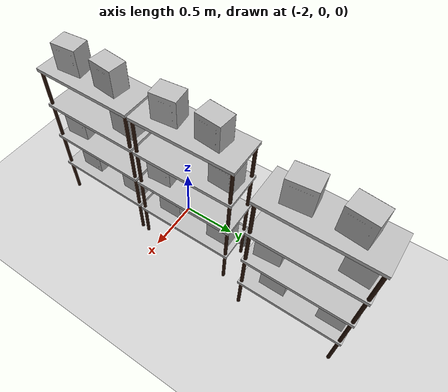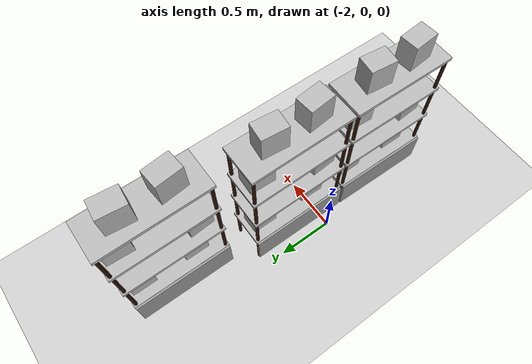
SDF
<sdf version="1.7">
 <world name="default">
  <model name="ground_plane">
   <static>1</static>
   <link name="link">
    <collision name="collision">
     <geometry><plane><normal>0 0 1</normal><size>100 100</size></plane></geometry>
     <surface><friction><ode><mu>100</mu><mu2>50</mu2></ode></friction></surface>
    </collision>
    <visual name="visual">
     <cast_shadows>0</cast_shadows>
     <geometry><plane><normal>0 0 1</normal><size>100 100</size></plane></geometry>
     <material>
      <script><uri>file://media/materials/scripts/gazebo.material</uri><name>Gazebo/Grey</name></script>
     </material>
    </visual>
   </link>
  </model>
  <model name="rack_with_box">
   <link name="link">
    <inertial>
     <mass>1.87</mass>
     <inertia><ixx>0.01857</ixx><ixy>0</ixy><ixz>0</ixz><iyy>0.015598</iyy><iyz>0</iyz><izz>0.00305</izz></inertia>
    </inertial>
    <visual name="visual1">
     <cast_shadows>0</cast_shadows>
     <geometry><mesh><uri>model://rack_with_box/meshes/rack.dae</uri></mesh></geometry>
     <material>
      <shader type="pixel"><normal_map>__default__</normal_map></shader>
      <emissive>0 0 0 1</emissive>
     </material>
    </visual>
    <visual name="visual_2">
     <cast_shadows>0</cast_shadows>
     <geometry><box><size>0.02 0.9 0.31</size></box></geometry>
     <material>
      <lighting>1</lighting>
      <script><uri>file://media/materials/scripts/gazebo.material</uri><name>Gazebo/Grey</name></script>
      <shader type="pixel"><normal_map>__default__</normal_map></shader>
      <ambient>0.3 0.3 0.3 1</ambient>
      <diffuse>0.7 0.7 0.7 1</diffuse>
      <specular>0.01 0.01 0.01 1</specular>
      <emissive>0 0 0 1</emissive>
     </material>
     <pose>-0.185 0 0.22 0 -0 0</pose>
    </visual>
    <visual name="visual_3_box1">
     <cast_shadows>0</cast_shadows>
     <geometry><mesh><uri>model://box/meshes/box.dae</uri></mesh></geometry>
     <material>
      <shader type="pixel"><normal_map>__default__</normal_map></shader>
      <emissive>0 0 0 1</emissive>
     </material>
     <pose>0 -0.2 1.48 0 -0 0.1</pose>
    </visual>
    <visual name="visual_3_box2">
     <cast_shadows>0</cast_shadows>
     <geometry><mesh><uri>model://box/meshes/box.dae</uri></mesh></geometry>
     <material>
      <shader type="pixel"><normal_map>__default__</normal_map></shader>
      <emissive>0 0 0 1</emissive>
     </material>
     <pose>0 0.18 1.48 0 0 -0.1</pose>
    </visual>
    <visual name="visual_3_box3">
     <cast_shadows>0</cast_shadows>
     <geometry><mesh><uri>model://box/meshes/box.dae</uri></mesh></geometry>
     <material>
      <shader type="pixel"><normal_map>__default__</normal_map></shader>
      <emissive>0 0 0 1</emissive>
     </material>
     <pose>0 0.3 1.11 0 0 -0.05</pose>
    </visual>
    <visual name="visual_3_box4">
     <cast_shadows>0</cast_shadows>
     <geometry><mesh><uri>model://box/meshes/box.dae</uri></mesh></geometry>
     <material>
      <shader type="pixel"><normal_map>__default__</normal_map></shader>
      <emissive>0 0 0 1</emissive>
     </material>
     <pose>0 -0.3 0.75 0 -0 0.07</pose>
    </visual>
    <visual name="visual_3_box5">
     <cast_shadows>0</cast_shadows>
     <geometry><mesh><uri>model://box/meshes/box.dae</uri></mesh></geometry>
     <material>
      <shader type="pixel"><normal_map>__default__</normal_map></shader>
      <emissive>0 0 0 1</emissive>
     </material>
     <pose>0 0.3 0.38 0 -0 0</pose>
    </visual>
    <visual name="visual_3_box6">
     <cast_shadows>0</cast_shadows>
     <geometry><mesh><uri>model://box/meshes/box.dae</uri></mesh></geometry>
     <material>
      <shader type="pixel"><normal_map>__default__</normal_map></shader>
      <emissive>0 0 0 1</emissive>
     </material>
     <pose>0 -0.2 0.38 0 -0 0</pose>
    </visual>
    <collision name="collision_7">
     <pose>0 0 0.36 0 1.57 1.57</pose>
     <geometry><box><size>0.05 0.35 0.91</size></box></geometry>
     <surface>
      <friction>
       <ode><mu>1</mu><mu2>1</mu2><fdir1>0 0 0</fdir1><slip1>0</slip1><slip2>0</slip2></ode>
       <torsional>
        <coefficient>1</coefficient>
        <patch_radius>0</patch_radius>
        <surface_radius>0</surface_radius>
        <use_patch_radius>1</use_patch_radius>
        <ode><slip>0</slip></ode>
       </torsional>
      </friction>
      <bounce><restitution_coefficient>0</restitution_coefficient><threshold>1e+06</threshold></bounce>
      <contact>
       <collide_without_contact>0</collide_without_contact>
       <collide_without_contact_bitmask>1</collide_without_contact_bitmask>
       <collide_bitmask>1</collide_bitmask>
       <ode>
        <soft_cfm>0</soft_cfm>
        <soft_erp>0.2</soft_erp>
        <kp>1e+15</kp>
        <kd>1e+13</kd>
        <max_vel>0.01</max_vel>
        <min_depth>0</min_depth>
       </ode>
       <bullet>
        <split_impulse>1</split_impulse>
        <split_impulse_penetration_threshold>-0.01</split_impulse_penetration_threshold>
        <soft_cfm>0</soft_cfm>
        <soft_erp>0.2</soft_erp>
        <kp>1e+13</kp>
        <kd>1</kd>
       </bullet>
      </contact>
     </surface>
    </collision>
    <collision name="collision_6">
     <pose>0 0 0.725 0 1.57 1.57</pose>
     <geometry><box><size>0.05 0.35 0.91</size></box></geometry>
     <surface>
      <friction>
       <ode><mu>1</mu><mu2>1</mu2><fdir1>0 0 0</fdir1><slip1>0</slip1><slip2>0</slip2></ode>
       <torsional>
        <coefficient>1</coefficient>
        <patch_radius>0</patch_radius>
        <surface_radius>0</surface_radius>
        <use_patch_radius>1</use_patch_radius>
        <ode><slip>0</slip></ode>
       </torsional>
      </friction>
      <bounce><restitution_coefficient>0</restitution_coefficient><threshold>1e+06</threshold></bounce>
      <contact>
       <collide_without_contact>0</collide_without_contact>
       <collide_without_contact_bitmask>1</collide_without_contact_bitmask>
       <collide_bitmask>1</collide_bitmask>
       <ode>
        <soft_cfm>0</soft_cfm>
        <soft_erp>0.2</soft_erp>
        <kp>1e+15</kp>
        <kd>1e+13</kd>
        <max_vel>0.01</max_vel>
        <min_depth>0</min_depth>
       </ode>
       <bullet>
        <split_impulse>1</split_impulse>
        <split_impulse_penetration_threshold>-0.01</split_impulse_penetration_threshold>
        <soft_cfm>0</soft_cfm>
        <soft_erp>0.2</soft_erp>
        <kp>1e+13</kp>
        <kd>1</kd>
       </bullet>
      </contact>
     </surface>
    </collision>
    <collision name="collision_5">
     <pose>0 0 1.09 0 1.57 1.57</pose>
     <geometry><box><size>0.05 0.35 0.91</size></box></geometry>
     <surface>
      <friction>
       <ode><mu>1</mu><mu2>1</mu2><fdir1>0 0 0</fdir1><slip1>0</slip1><slip2>0</slip2></ode>
       <torsional>
        <coefficient>1</coefficient>
        <patch_radius>0</patch_radius>
        <surface_radius>0</surface_radius>
        <use_patch_radius>1</use_patch_radius>
        <ode><slip>0</slip></ode>
       </torsional>
      </friction>
      <bounce><restitution_coefficient>0</restitution_coefficient><threshold>1e+06</threshold></bounce>
      <contact>
       <collide_without_contact>0</collide_without_contact>
       <collide_without_contact_bitmask>1</collide_without_contact_bitmask>
       <collide_bitmask>1</collide_bitmask>
       <ode>
        <soft_cfm>0</soft_cfm>
        <soft_erp>0.2</soft_erp>
        <kp>1e+15</kp>
        <kd>1e+13</kd>
        <max_vel>0.01</max_vel>
        <min_depth>0</min_depth>
       </ode>
       <bullet>
        <split_impulse>1</split_impulse>
        <split_impulse_penetration_threshold>-0.01</split_impulse_penetration_threshold>
        <soft_cfm>0</soft_cfm>
        <soft_erp>0.2</soft_erp>
        <kp>1e+13</kp>
        <kd>1</kd>
       </bullet>
      </contact>
     </surface>
    </collision>
    <collision name="collision_3">
     <pose>0 0 1.455 0 1.57 1.57</pose>
     <geometry><box><size>0.05 0.35 0.91</size></box></geometry>
     <surface>
      <friction>
       <ode><mu>1</mu><mu2>1</mu2><fdir1>0 0 0</fdir1><slip1>0</slip1><slip2>0</slip2></ode>
       <torsional>
        <coefficient>1</coefficient>
        <patch_radius>0</patch_radius>
        <surface_radius>0</surface_radius>
        <use_patch_radius>1</use_patch_radius>
        <ode><slip>0</slip></ode>
       </torsional>
      </friction>
      <bounce><restitution_coefficient>0</restitution_coefficient><threshold>1e+06</threshold></bounce>
      <contact>
       <collide_without_contact>0</collide_without_contact>
       <collide_without_contact_bitmask>1</collide_without_contact_bitmask>
       <collide_bitmask>1</collide_bitmask>
       <ode>
        <soft_cfm>0</soft_cfm>
        <soft_erp>0.2</soft_erp>
        <kp>1e+15</kp>
        <kd>1e+13</kd>
        <max_vel>0.01</max_vel>
        <min_depth>0</min_depth>
       </ode>
       <bullet>
        <split_impulse>1</split_impulse>
        <split_impulse_penetration_threshold>-0.01</split_impulse_penetration_threshold>
        <soft_cfm>0</soft_cfm>
        <soft_erp>0.2</soft_erp>
        <kp>1e+13</kp>
        <kd>1</kd>
       </bullet>
      </contact>
     </surface>
    </collision>
    <collision name="collision_1">
     <pose>0 0.43 0.73 0 -0 1.57</pose>
     <geometry><box><size>0.05 0.36 1.46</size></box></geometry>
     <surface>
      <friction>
       <ode><mu>1</mu><mu2>1</mu2><fdir1>0 0 0</fdir1><slip1>0</slip1><slip2>0</slip2></ode>
       <torsional>
        <coefficient>1</coefficient>
        <patch_radius>0</patch_radius>
        <surface_radius>0</surface_radius>
        <use_patch_radius>1</use_patch_radius>
        <ode><slip>0</slip></ode>
       </torsional>
      </friction>
      <bounce><restitution_coefficient>0</restitution_coefficient><threshold>1e+06</threshold></bounce>
      <contact>
       <collide_without_contact>0</collide_without_contact>
       <collide_without_contact_bitmask>1</collide_without_contact_bitmask>
       <collide_bitmask>1</collide_bitmask>
       <ode>
        <soft_cfm>0</soft_cfm>
        <soft_erp>0.2</soft_erp>
        <kp>1e+15</kp>
        <kd>1e+13</kd>
        <max_vel>0.01</max_vel>
        <min_depth>0</min_depth>
       </ode>
       <bullet>
        <split_impulse>1</split_impulse>
        <split_impulse_penetration_threshold>-0.01</split_impulse_penetration_threshold>
        <soft_cfm>0</soft_cfm>
        <soft_erp>0.2</soft_erp>
        <kp>1e+13</kp>
        <kd>1</kd>
       </bullet>
      </contact>
     </surface>
    </collision>
    <collision name="collision_2">
     <pose>0 -0.43 0.73 0 -0 1.57</pose>
     <geometry><box><size>0.05 0.36 1.46</size></box></geometry>
     <surface>
      <friction>
       <ode><mu>1</mu><mu2>1</mu2><fdir1>0 0 0</fdir1><slip1>0</slip1><slip2>0</slip2></ode>
       <torsional>
        <coefficient>1</coefficient>
        <patch_radius>0</patch_radius>
        <surface_radius>0</surface_radius>
        <use_patch_radius>1</use_patch_radius>
        <ode><slip>0</slip></ode>
       </torsional>
      </friction>
      <bounce><restitution_coefficient>0</restitution_coefficient><threshold>1e+06</threshold></bounce>
      <contact>
       <collide_without_contact>0</collide_without_contact>
       <collide_without_contact_bitmask>1</collide_without_contact_bitmask>
       <collide_bitmask>1</collide_bitmask>
       <ode>
        <soft_cfm>0</soft_cfm>
        <soft_erp>0.2</soft_erp>
        <kp>1e+15</kp>
        <kd>1e+13</kd>
        <max_vel>0.01</max_vel>
        <min_depth>0</min_depth>
       </ode>
       <bullet>
        <split_impulse>1</split_impulse>
        <split_impulse_penetration_threshold>-0.01</split_impulse_penetration_threshold>
        <soft_cfm>0</soft_cfm>
        <soft_erp>0.2</soft_erp>
        <kp>1e+13</kp>
        <kd>1</kd>
       </bullet>
      </contact>
     </surface>
    </collision>
    <collision name="collision">
     <pose>-0.185 0 0.22 0 -0 0</pose>
     <geometry><box><size>0.02 0.9 0.31</size></box></geometry>
     <surface>
      <friction>
       <ode><mu>1</mu><mu2>1</mu2><fdir1>0 0 0</fdir1><slip1>0</slip1><slip2>0</slip2></ode>
       <torsional>
        <coefficient>1</coefficient>
        <patch_radius>0</patch_radius>
        <surface_radius>0</surface_radius>
        <use_patch_radius>1</use_patch_radius>
        <ode><slip>0</slip></ode>
       </torsional>
      </friction>
      <bounce><restitution_coefficient>0</restitution_coefficient><threshold>1e+06</threshold></bounce>
      <contact>
       <collide_without_contact>0</collide_without_contact>
       <collide_without_contact_bitmask>1</collide_without_contact_bitmask>
       <collide_bitmask>1</collide_bitmask>
       <ode>
        <soft_cfm>0</soft_cfm>
        <soft_erp>0.2</soft_erp>
        <kp>1e+15</kp>
        <kd>1e+13</kd>
        <max_vel>0.01</max_vel>
        <min_depth>0</min_depth>
       </ode>
       <bullet>
        <split_impulse>1</split_impulse>
        <split_impulse_penetration_threshold>-0.01</split_impulse_penetration_threshold>
        <soft_cfm>0</soft_cfm>
        <soft_erp>0.2</soft_erp>
        <kp>1e+13</kp>
        <kd>1</kd>
       </bullet>
      </contact>
     </surface>
    </collision>
   </link>
   <static>0</static>
   <pose>-1.59603 1.35995 -0 0 -0 0</pose>
  </model>
  <model name="rack_with_box_0">
   <link name="link">
    <inertial>
     <mass>1.87</mass>
     <inertia><ixx>0.01857</ixx><ixy>0</ixy><ixz>0</ixz><iyy>0.015598</iyy><iyz>0</iyz><izz>0.00305</izz></inertia>
    </inertial>
    <visual name="visual1">
     <cast_shadows>0</cast_shadows>
     <geometry><mesh><uri>model://rack_with_box/meshes/rack.dae</uri></mesh></geometry>
     <material>
      <shader type="pixel"><normal_map>__default__</normal_map></shader>
      <emissive>0 0 0 1</emissive>
     </material>
    </visual>
    <visual name="visual_2">
     <cast_shadows>0</cast_shadows>
     <geometry><box><size>0.02 0.9 0.31</size></box></geometry>
     <material>
      <lighting>1</lighting>
      <script><uri>file://media/materials/scripts/gazebo.material</uri><name>Gazebo/Grey</name></script>
      <shader type="pixel"><normal_map>__default__</normal_map></shader>
      <ambient>0.3 0.3 0.3 1</ambient>
      <diffuse>0.7 0.7 0.7 1</diffuse>
      <specular>0.01 0.01 0.01 1</specular>
      <emissive>0 0 0 1</emissive>
     </material>
     <pose>-0.185 0 0.22 0 -0 0</pose>
    </visual>
    <visual name="visual_3_box1">
     <cast_shadows>0</cast_shadows>
     <geometry><mesh><uri>model://box/meshes/box.dae</uri></mesh></geometry>
     <material>
      <shader type="pixel"><normal_map>__default__</normal_map></shader>
      <emissive>0 0 0 1</emissive>
     </material>
     <pose>0 -0.2 1.48 0 -0 0.1</pose>
    </visual>
    <visual name="visual_3_box2">
     <cast_shadows>0</cast_shadows>
     <geometry><mesh><uri>model://box/meshes/box.dae</uri></mesh></geometry>
     <material>
      <shader type="pixel"><normal_map>__default__</normal_map></shader>
      <emissive>0 0 0 1</emissive>
     </material>
     <pose>0 0.18 1.48 0 0 -0.1</pose>
    </visual>
    <visual name="visual_3_box3">
     <cast_shadows>0</cast_shadows>
     <geometry><mesh><uri>model://box/meshes/box.dae</uri></mesh></geometry>
     <material>
      <shader type="pixel"><normal_map>__default__</normal_map></shader>
      <emissive>0 0 0 1</emissive>
     </material>
     <pose>0 0.3 1.11 0 0 -0.05</pose>
    </visual>
    <visual name="visual_3_box4">
     <cast_shadows>0</cast_shadows>
     <geometry><mesh><uri>model://box/meshes/box.dae</uri></mesh></geometry>
     <material>
      <shader type="pixel"><normal_map>__default__</normal_map></shader>
      <emissive>0 0 0 1</emissive>
     </material>
     <pose>0 -0.3 0.75 0 -0 0.07</pose>
    </visual>
    <visual name="visual_3_box5">
     <cast_shadows>0</cast_shadows>
     <geometry><mesh><uri>model://box/meshes/box.dae</uri></mesh></geometry>
     <material>
      <shader type="pixel"><normal_map>__default__</normal_map></shader>
      <emissive>0 0 0 1</emissive>
     </material>
     <pose>0 0.3 0.38 0 -0 0</pose>
    </visual>
    <visual name="visual_3_box6">
     <cast_shadows>0</cast_shadows>
     <geometry><mesh><uri>model://box/meshes/box.dae</uri></mesh></geometry>
     <material>
      <shader type="pixel"><normal_map>__default__</normal_map></shader>
      <emissive>0 0 0 1</emissive>
     </material>
     <pose>0 -0.2 0.38 0 -0 0</pose>
    </visual>
    <collision name="collision_7">
     <pose>0 0 0.36 0 1.57 1.57</pose>
     <geometry><box><size>0.05 0.35 0.91</size></box></geometry>
     <surface>
      <friction>
       <ode><mu>1</mu><mu2>1</mu2><fdir1>0 0 0</fdir1><slip1>0</slip1><slip2>0</slip2></ode>
       <torsional>
        <coefficient>1</coefficient>
        <patch_radius>0</patch_radius>
        <surface_radius>0</surface_radius>
        <use_patch_radius>1</use_patch_radius>
        <ode><slip>0</slip></ode>
       </torsional>
      </friction>
      <bounce><restitution_coefficient>0</restitution_coefficient><threshold>1e+06</threshold></bounce>
      <contact>
       <collide_without_contact>0</collide_without_contact>
       <collide_without_contact_bitmask>1</collide_without_contact_bitmask>
       <collide_bitmask>1</collide_bitmask>
       <ode>
        <soft_cfm>0</soft_cfm>
        <soft_erp>0.2</soft_erp>
        <kp>1e+15</kp>
        <kd>1e+13</kd>
        <max_vel>0.01</max_vel>
        <min_depth>0</min_depth>
       </ode>
       <bullet>
        <split_impulse>1</split_impulse>
        <split_impulse_penetration_threshold>-0.01</split_impulse_penetration_threshold>
        <soft_cfm>0</soft_cfm>
        <soft_erp>0.2</soft_erp>
        <kp>1e+13</kp>
        <kd>1</kd>
       </bullet>
      </contact>
     </surface>
    </collision>
    <collision name="collision_6">
     <pose>0 0 0.725 0 1.57 1.57</pose>
     <geometry><box><size>0.05 0.35 0.91</size></box></geometry>
     <surface>
      <friction>
       <ode><mu>1</mu><mu2>1</mu2><fdir1>0 0 0</fdir1><slip1>0</slip1><slip2>0</slip2></ode>
       <torsional>
        <coefficient>1</coefficient>
        <patch_radius>0</patch_radius>
        <surface_radius>0</surface_radius>
        <use_patch_radius>1</use_patch_radius>
        <ode><slip>0</slip></ode>
       </torsional>
      </friction>
      <bounce><restitution_coefficient>0</restitution_coefficient><threshold>1e+06</threshold></bounce>
      <contact>
       <collide_without_contact>0</collide_without_contact>
       <collide_without_contact_bitmask>1</collide_without_contact_bitmask>
       <collide_bitmask>1</collide_bitmask>
       <ode>
        <soft_cfm>0</soft_cfm>
        <soft_erp>0.2</soft_erp>
        <kp>1e+15</kp>
        <kd>1e+13</kd>
        <max_vel>0.01</max_vel>
        <min_depth>0</min_depth>
       </ode>
       <bullet>
        <split_impulse>1</split_impulse>
        <split_impulse_penetration_threshold>-0.01</split_impulse_penetration_threshold>
        <soft_cfm>0</soft_cfm>
        <soft_erp>0.2</soft_erp>
        <kp>1e+13</kp>
        <kd>1</kd>
       </bullet>
      </contact>
     </surface>
    </collision>
    <collision name="collision_5">
     <pose>0 0 1.09 0 1.57 1.57</pose>
     <geometry><box><size>0.05 0.35 0.91</size></box></geometry>
     <surface>
      <friction>
       <ode><mu>1</mu><mu2>1</mu2><fdir1>0 0 0</fdir1><slip1>0</slip1><slip2>0</slip2></ode>
       <torsional>
        <coefficient>1</coefficient>
        <patch_radius>0</patch_radius>
        <surface_radius>0</surface_radius>
        <use_patch_radius>1</use_patch_radius>
        <ode><slip>0</slip></ode>
       </torsional>
      </friction>
      <bounce><restitution_coefficient>0</restitution_coefficient><threshold>1e+06</threshold></bounce>
      <contact>
       <collide_without_contact>0</collide_without_contact>
       <collide_without_contact_bitmask>1</collide_without_contact_bitmask>
       <collide_bitmask>1</collide_bitmask>
       <ode>
        <soft_cfm>0</soft_cfm>
        <soft_erp>0.2</soft_erp>
        <kp>1e+15</kp>
        <kd>1e+13</kd>
        <max_vel>0.01</max_vel>
        <min_depth>0</min_depth>
       </ode>
       <bullet>
        <split_impulse>1</split_impulse>
        <split_impulse_penetration_threshold>-0.01</split_impulse_penetration_threshold>
        <soft_cfm>0</soft_cfm>
        <soft_erp>0.2</soft_erp>
        <kp>1e+13</kp>
        <kd>1</kd>
       </bullet>
      </contact>
     </surface>
    </collision>
    <collision name="collision_3">
     <pose>0 0 1.455 0 1.57 1.57</pose>
     <geometry><box><size>0.05 0.35 0.91</size></box></geometry>
     <surface>
      <friction>
       <ode><mu>1</mu><mu2>1</mu2><fdir1>0 0 0</fdir1><slip1>0</slip1><slip2>0</slip2></ode>
       <torsional>
        <coefficient>1</coefficient>
        <patch_radius>0</patch_radius>
        <surface_radius>0</surface_radius>
        <use_patch_radius>1</use_patch_radius>
        <ode><slip>0</slip></ode>
       </torsional>
      </friction>
      <bounce><restitution_coefficient>0</restitution_coefficient><threshold>1e+06</threshold></bounce>
      <contact>
       <collide_without_contact>0</collide_without_contact>
       <collide_without_contact_bitmask>1</collide_without_contact_bitmask>
       <collide_bitmask>1</collide_bitmask>
       <ode>
        <soft_cfm>0</soft_cfm>
        <soft_erp>0.2</soft_erp>
        <kp>1e+15</kp>
        <kd>1e+13</kd>
        <max_vel>0.01</max_vel>
        <min_depth>0</min_depth>
       </ode>
       <bullet>
        <split_impulse>1</split_impulse>
        <split_impulse_penetration_threshold>-0.01</split_impulse_penetration_threshold>
        <soft_cfm>0</soft_cfm>
        <soft_erp>0.2</soft_erp>
        <kp>1e+13</kp>
        <kd>1</kd>
       </bullet>
      </contact>
     </surface>
    </collision>
    <collision name="collision_1">
     <pose>0 0.43 0.73 0 -0 1.57</pose>
     <geometry><box><size>0.05 0.36 1.46</size></box></geometry>
     <surface>
      <friction>
       <ode><mu>1</mu><mu2>1</mu2><fdir1>0 0 0</fdir1><slip1>0</slip1><slip2>0</slip2></ode>
       <torsional>
        <coefficient>1</coefficient>
        <patch_radius>0</patch_radius>
        <surface_radius>0</surface_radius>
        <use_patch_radius>1</use_patch_radius>
        <ode><slip>0</slip></ode>
       </torsional>
      </friction>
      <bounce><restitution_coefficient>0</restitution_coefficient><threshold>1e+06</threshold></bounce>
      <contact>
       <collide_without_contact>0</collide_without_contact>
       <collide_without_contact_bitmask>1</collide_without_contact_bitmask>
       <collide_bitmask>1</collide_bitmask>
       <ode>
        <soft_cfm>0</soft_cfm>
        <soft_erp>0.2</soft_erp>
        <kp>1e+15</kp>
        <kd>1e+13</kd>
        <max_vel>0.01</max_vel>
        <min_depth>0</min_depth>
       </ode>
       <bullet>
        <split_impulse>1</split_impulse>
        <split_impulse_penetration_threshold>-0.01</split_impulse_penetration_threshold>
        <soft_cfm>0</soft_cfm>
        <soft_erp>0.2</soft_erp>
        <kp>1e+13</kp>
        <kd>1</kd>
       </bullet>
      </contact>
     </surface>
    </collision>
    <collision name="collision_2">
     <pose>0 -0.43 0.73 0 -0 1.57</pose>
     <geometry><box><size>0.05 0.36 1.46</size></box></geometry>
     <surface>
      <friction>
       <ode><mu>1</mu><mu2>1</mu2><fdir1>0 0 0</fdir1><slip1>0</slip1><slip2>0</slip2></ode>
       <torsional>
        <coefficient>1</coefficient>
        <patch_radius>0</patch_radius>
        <surface_radius>0</surface_radius>
        <use_patch_radius>1</use_patch_radius>
        <ode><slip>0</slip></ode>
       </torsional>
      </friction>
      <bounce><restitution_coefficient>0</restitution_coefficient><threshold>1e+06</threshold></bounce>
      <contact>
       <collide_without_contact>0</collide_without_contact>
       <collide_without_contact_bitmask>1</collide_without_contact_bitmask>
       <collide_bitmask>1</collide_bitmask>
       <ode>
        <soft_cfm>0</soft_cfm>
        <soft_erp>0.2</soft_erp>
        <kp>1e+15</kp>
        <kd>1e+13</kd>
        <max_vel>0.01</max_vel>
        <min_depth>0</min_depth>
       </ode>
       <bullet>
        <split_impulse>1</split_impulse>
        <split_impulse_penetration_threshold>-0.01</split_impulse_penetration_threshold>
        <soft_cfm>0</soft_cfm>
        <soft_erp>0.2</soft_erp>
        <kp>1e+13</kp>
        <kd>1</kd>
       </bullet>
      </contact>
     </surface>
    </collision>
    <collision name="collision">
     <pose>-0.185 0 0.22 0 -0 0</pose>
     <geometry><box><size>0.02 0.9 0.31</size></box></geometry>
     <surface>
      <friction>
       <ode><mu>1</mu><mu2>1</mu2><fdir1>0 0 0</fdir1><slip1>0</slip1><slip2>0</slip2></ode>
       <torsional>
        <coefficient>1</coefficient>
        <patch_radius>0</patch_radius>
        <surface_radius>0</surface_radius>
        <use_patch_radius>1</use_patch_radius>
        <ode><slip>0</slip></ode>
       </torsional>
      </friction>
      <bounce><restitution_coefficient>0</restitution_coefficient><threshold>1e+06</threshold></bounce>
      <contact>
       <collide_without_contact>0</collide_without_contact>
       <collide_without_contact_bitmask>1</collide_without_contact_bitmask>
       <collide_bitmask>1</collide_bitmask>
       <ode>
        <soft_cfm>0</soft_cfm>
        <soft_erp>0.2</soft_erp>
        <kp>1e+15</kp>
        <kd>1e+13</kd>
        <max_vel>0.01</max_vel>
        <min_depth>0</min_depth>
       </ode>
       <bullet>
        <split_impulse>1</split_impulse>
        <split_impulse_penetration_threshold>-0.01</split_impulse_penetration_threshold>
        <soft_cfm>0</soft_cfm>
        <soft_erp>0.2</soft_erp>
        <kp>1e+13</kp>
        <kd>1</kd>
       </bullet>
      </contact>
     </surface>
    </collision>
   </link>
   <static>0</static>
   <pose>-1.72754 0.256402 -0 0 -0 0</pose>
  </model>
  <model name="rack_with_box_1">
   <link name="link">
    <inertial>
     <mass>1.87</mass>
     <inertia><ixx>0.01857</ixx><ixy>0</ixy><ixz>0</ixz><iyy>0.015598</iyy><iyz>0</iyz><izz>0.00305</izz></inertia>
    </inertial>
    <visual name="visual1">
     <cast_shadows>0</cast_shadows>
     <geometry><mesh><uri>model://rack_with_box/meshes/rack.dae</uri></mesh></geometry>
     <material>
      <shader type="pixel"><normal_map>__default__</normal_map></shader>
      <emissive>0 0 0 1</emissive>
     </material>
    </visual>
    <visual name="visual_2">
     <cast_shadows>0</cast_shadows>
     <geometry><box><size>0.02 0.9 0.31</size></box></geometry>
     <material>
      <lighting>1</lighting>
      <script><uri>file://media/materials/scripts/gazebo.material</uri><name>Gazebo/Grey</name></script>
      <shader type="pixel"><normal_map>__default__</normal_map></shader>
      <ambient>0.3 0.3 0.3 1</ambient>
      <diffuse>0.7 0.7 0.7 1</diffuse>
      <specular>0.01 0.01 0.01 1</specular>
      <emissive>0 0 0 1</emissive>
     </material>
     <pose>-0.185 0 0.22 0 -0 0</pose>
    </visual>
    <visual name="visual_3_box1">
     <cast_shadows>0</cast_shadows>
     <geometry><mesh><uri>model://box/meshes/box.dae</uri></mesh></geometry>
     <material>
      <shader type="pixel"><normal_map>__default__</normal_map></shader>
      <emissive>0 0 0 1</emissive>
     </material>
     <pose>0 -0.2 1.48 0 -0 0.1</pose>
    </visual>
    <visual name="visual_3_box2">
     <cast_shadows>0</cast_shadows>
     <geometry><mesh><uri>model://box/meshes/box.dae</uri></mesh></geometry>
     <material>
      <shader type="pixel"><normal_map>__default__</normal_map></shader>
      <emissive>0 0 0 1</emissive>
     </material>
     <pose>0 0.18 1.48 0 0 -0.1</pose>
    </visual>
    <visual name="visual_3_box3">
     <cast_shadows>0</cast_shadows>
     <geometry><mesh><uri>model://box/meshes/box.dae</uri></mesh></geometry>
     <material>
      <shader type="pixel"><normal_map>__default__</normal_map></shader>
      <emissive>0 0 0 1</emissive>
     </material>
     <pose>0 0.3 1.11 0 0 -0.05</pose>
    </visual>
    <visual name="visual_3_box4">
     <cast_shadows>0</cast_shadows>
     <geometry><mesh><uri>model://box/meshes/box.dae</uri></mesh></geometry>
     <material>
      <shader type="pixel"><normal_map>__default__</normal_map></shader>
      <emissive>0 0 0 1</emissive>
     </material>
     <pose>0 -0.3 0.75 0 -0 0.07</pose>
    </visual>
    <visual name="visual_3_box5">
     <cast_shadows>0</cast_shadows>
     <geometry><mesh><uri>model://box/meshes/box.dae</uri></mesh></geometry>
     <material>
      <shader type="pixel"><normal_map>__default__</normal_map></shader>
      <emissive>0 0 0 1</emissive>
     </material>
     <pose>0 0.3 0.38 0 -0 0</pose>
    </visual>
    <visual name="visual_3_box6">
     <cast_shadows>0</cast_shadows>
     <geometry><mesh><uri>model://box/meshes/box.dae</uri></mesh></geometry>
     <material>
      <shader type="pixel"><normal_map>__default__</normal_map></shader>
      <emissive>0 0 0 1</emissive>
     </material>
     <pose>0 -0.2 0.38 0 -0 0</pose>
    </visual>
    <collision name="collision_7">
     <pose>0 0 0.36 0 1.57 1.57</pose>
     <geometry><box><size>0.05 0.35 0.91</size></box></geometry>
     <surface>
      <friction>
       <ode><mu>1</mu><mu2>1</mu2><fdir1>0 0 0</fdir1><slip1>0</slip1><slip2>0</slip2></ode>
       <torsional>
        <coefficient>1</coefficient>
        <patch_radius>0</patch_radius>
        <surface_radius>0</surface_radius>
        <use_patch_radius>1</use_patch_radius>
        <ode><slip>0</slip></ode>
       </torsional>
      </friction>
      <bounce><restitution_coefficient>0</restitution_coefficient><threshold>1e+06</threshold></bounce>
      <contact>
       <collide_without_contact>0</collide_without_contact>
       <collide_without_contact_bitmask>1</collide_without_contact_bitmask>
       <collide_bitmask>1</collide_bitmask>
       <ode>
        <soft_cfm>0</soft_cfm>
        <soft_erp>0.2</soft_erp>
        <kp>1e+15</kp>
        <kd>1e+13</kd>
        <max_vel>0.01</max_vel>
        <min_depth>0</min_depth>
       </ode>
       <bullet>
        <split_impulse>1</split_impulse>
        <split_impulse_penetration_threshold>-0.01</split_impulse_penetration_threshold>
        <soft_cfm>0</soft_cfm>
        <soft_erp>0.2</soft_erp>
        <kp>1e+13</kp>
        <kd>1</kd>
       </bullet>
      </contact>
     </surface>
    </collision>
    <collision name="collision_6">
     <pose>0 0 0.725 0 1.57 1.57</pose>
     <geometry><box><size>0.05 0.35 0.91</size></box></geometry>
     <surface>
      <friction>
       <ode><mu>1</mu><mu2>1</mu2><fdir1>0 0 0</fdir1><slip1>0</slip1><slip2>0</slip2></ode>
       <torsional>
        <coefficient>1</coefficient>
        <patch_radius>0</patch_radius>
        <surface_radius>0</surface_radius>
        <use_patch_radius>1</use_patch_radius>
        <ode><slip>0</slip></ode>
       </torsional>
      </friction>
      <bounce><restitution_coefficient>0</restitution_coefficient><threshold>1e+06</threshold></bounce>
      <contact>
       <collide_without_contact>0</collide_without_contact>
       <collide_without_contact_bitmask>1</collide_without_contact_bitmask>
       <collide_bitmask>1</collide_bitmask>
       <ode>
        <soft_cfm>0</soft_cfm>
        <soft_erp>0.2</soft_erp>
        <kp>1e+15</kp>
        <kd>1e+13</kd>
        <max_vel>0.01</max_vel>
        <min_depth>0</min_depth>
       </ode>
       <bullet>
        <split_impulse>1</split_impulse>
        <split_impulse_penetration_threshold>-0.01</split_impulse_penetration_threshold>
        <soft_cfm>0</soft_cfm>
        <soft_erp>0.2</soft_erp>
        <kp>1e+13</kp>
        <kd>1</kd>
       </bullet>
      </contact>
     </surface>
    </collision>
    <collision name="collision_5">
     <pose>0 0 1.09 0 1.57 1.57</pose>
     <geometry><box><size>0.05 0.35 0.91</size></box></geometry>
     <surface>
      <friction>
       <ode><mu>1</mu><mu2>1</mu2><fdir1>0 0 0</fdir1><slip1>0</slip1><slip2>0</slip2></ode>
       <torsional>
        <coefficient>1</coefficient>
        <patch_radius>0</patch_radius>
        <surface_radius>0</surface_radius>
        <use_patch_radius>1</use_patch_radius>
        <ode><slip>0</slip></ode>
       </torsional>
      </friction>
      <bounce><restitution_coefficient>0</restitution_coefficient><threshold>1e+06</threshold></bounce>
      <contact>
       <collide_without_contact>0</collide_without_contact>
       <collide_without_contact_bitmask>1</collide_without_contact_bitmask>
       <collide_bitmask>1</collide_bitmask>
       <ode>
        <soft_cfm>0</soft_cfm>
        <soft_erp>0.2</soft_erp>
        <kp>1e+15</kp>
        <kd>1e+13</kd>
        <max_vel>0.01</max_vel>
        <min_depth>0</min_depth>
       </ode>
       <bullet>
        <split_impulse>1</split_impulse>
        <split_impulse_penetration_threshold>-0.01</split_impulse_penetration_threshold>
        <soft_cfm>0</soft_cfm>
        <soft_erp>0.2</soft_erp>
        <kp>1e+13</kp>
        <kd>1</kd>
       </bullet>
      </contact>
     </surface>
    </collision>
    <collision name="collision_3">
     <pose>0 0 1.455 0 1.57 1.57</pose>
     <geometry><box><size>0.05 0.35 0.91</size></box></geometry>
     <surface>
      <friction>
       <ode><mu>1</mu><mu2>1</mu2><fdir1>0 0 0</fdir1><slip1>0</slip1><slip2>0</slip2></ode>
       <torsional>
        <coefficient>1</coefficient>
        <patch_radius>0</patch_radius>
        <surface_radius>0</surface_radius>
        <use_patch_radius>1</use_patch_radius>
        <ode><slip>0</slip></ode>
       </torsional>
      </friction>
      <bounce><restitution_coefficient>0</restitution_coefficient><threshold>1e+06</threshold></bounce>
      <contact>
       <collide_without_contact>0</collide_without_contact>
       <collide_without_contact_bitmask>1</collide_without_contact_bitmask>
       <collide_bitmask>1</collide_bitmask>
       <ode>
        <soft_cfm>0</soft_cfm>
        <soft_erp>0.2</soft_erp>
        <kp>1e+15</kp>
        <kd>1e+13</kd>
        <max_vel>0.01</max_vel>
        <min_depth>0</min_depth>
       </ode>
       <bullet>
        <split_impulse>1</split_impulse>
        <split_impulse_penetration_threshold>-0.01</split_impulse_penetration_threshold>
        <soft_cfm>0</soft_cfm>
        <soft_erp>0.2</soft_erp>
        <kp>1e+13</kp>
        <kd>1</kd>
       </bullet>
      </contact>
     </surface>
    </collision>
    <collision name="collision_1">
     <pose>0 0.43 0.73 0 -0 1.57</pose>
     <geometry><box><size>0.05 0.36 1.46</size></box></geometry>
     <surface>
      <friction>
       <ode><mu>1</mu><mu2>1</mu2><fdir1>0 0 0</fdir1><slip1>0</slip1><slip2>0</slip2></ode>
       <torsional>
        <coefficient>1</coefficient>
        <patch_radius>0</patch_radius>
        <surface_radius>0</surface_radius>
        <use_patch_radius>1</use_patch_radius>
        <ode><slip>0</slip></ode>
       </torsional>
      </friction>
      <bounce><restitution_coefficient>0</restitution_coefficient><threshold>1e+06</threshold></bounce>
      <contact>
       <collide_without_contact>0</collide_without_contact>
       <collide_without_contact_bitmask>1</collide_without_contact_bitmask>
       <collide_bitmask>1</collide_bitmask>
       <ode>
        <soft_cfm>0</soft_cfm>
        <soft_erp>0.2</soft_erp>
        <kp>1e+15</kp>
        <kd>1e+13</kd>
        <max_vel>0.01</max_vel>
        <min_depth>0</min_depth>
       </ode>
       <bullet>
        <split_impulse>1</split_impulse>
        <split_impulse_penetration_threshold>-0.01</split_impulse_penetration_threshold>
        <soft_cfm>0</soft_cfm>
        <soft_erp>0.2</soft_erp>
        <kp>1e+13</kp>
        <kd>1</kd>
       </bullet>
      </contact>
     </surface>
    </collision>
    <collision name="collision_2">
     <pose>0 -0.43 0.73 0 -0 1.57</pose>
     <geometry><box><size>0.05 0.36 1.46</size></box></geometry>
     <surface>
      <friction>
       <ode><mu>1</mu><mu2>1</mu2><fdir1>0 0 0</fdir1><slip1>0</slip1><slip2>0</slip2></ode>
       <torsional>
        <coefficient>1</coefficient>
        <patch_radius>0</patch_radius>
        <surface_radius>0</surface_radius>
        <use_patch_radius>1</use_patch_radius>
        <ode><slip>0</slip></ode>
       </torsional>
      </friction>
      <bounce><restitution_coefficient>0</restitution_coefficient><threshold>1e+06</threshold></bounce>
      <contact>
       <collide_without_contact>0</collide_without_contact>
       <collide_without_contact_bitmask>1</collide_without_contact_bitmask>
       <collide_bitmask>1</collide_bitmask>
       <ode>
        <soft_cfm>0</soft_cfm>
        <soft_erp>0.2</soft_erp>
        <kp>1e+15</kp>
        <kd>1e+13</kd>
        <max_vel>0.01</max_vel>
        <min_depth>0</min_depth>
       </ode>
       <bullet>
        <split_impulse>1</split_impulse>
        <split_impulse_penetration_threshold>-0.01</split_impulse_penetration_threshold>
        <soft_cfm>0</soft_cfm>
        <soft_erp>0.2</soft_erp>
        <kp>1e+13</kp>
        <kd>1</kd>
       </bullet>
      </contact>
     </surface>
    </collision>
    <collision name="collision">
     <pose>-0.185 0 0.22 0 -0 0</pose>
     <geometry><box><size>0.02 0.9 0.31</size></box></geometry>
     <surface>
      <friction>
       <ode><mu>1</mu><mu2>1</mu2><fdir1>0 0 0</fdir1><slip1>0</slip1><slip2>0</slip2></ode>
       <torsional>
        <coefficient>1</coefficient>
        <patch_radius>0</patch_radius>
        <surface_radius>0</surface_radius>
        <use_patch_radius>1</use_patch_radius>
        <ode><slip>0</slip></ode>
       </torsional>
      </friction>
      <bounce><restitution_coefficient>0</restitution_coefficient><threshold>1e+06</threshold></bounce>
      <contact>
       <collide_without_contact>0</collide_without_contact>
       <collide_without_contact_bitmask>1</collide_without_contact_bitmask>
       <collide_bitmask>1</collide_bitmask>
       <ode>
        <soft_cfm>0</soft_cfm>
        <soft_erp>0.2</soft_erp>
        <kp>1e+15</kp>
        <kd>1e+13</kd>
        <max_vel>0.01</max_vel>
        <min_depth>0</min_depth>
       </ode>
       <bullet>
        <split_impulse>1</split_impulse>
        <split_impulse_penetration_threshold>-0.01</split_impulse_penetration_threshold>
        <soft_cfm>0</soft_cfm>
        <soft_erp>0.2</soft_erp>
        <kp>1e+13</kp>
        <kd>1</kd>
       </bullet>
      </contact>
     </surface>
    </collision>
   </link>
   <static>0</static>
   <pose>-1.73845 -0.673357 -1.3e-05 -2.6e-05 -4e-06 -0.014014</pose>
  </model>
 </world>
</sdf>
